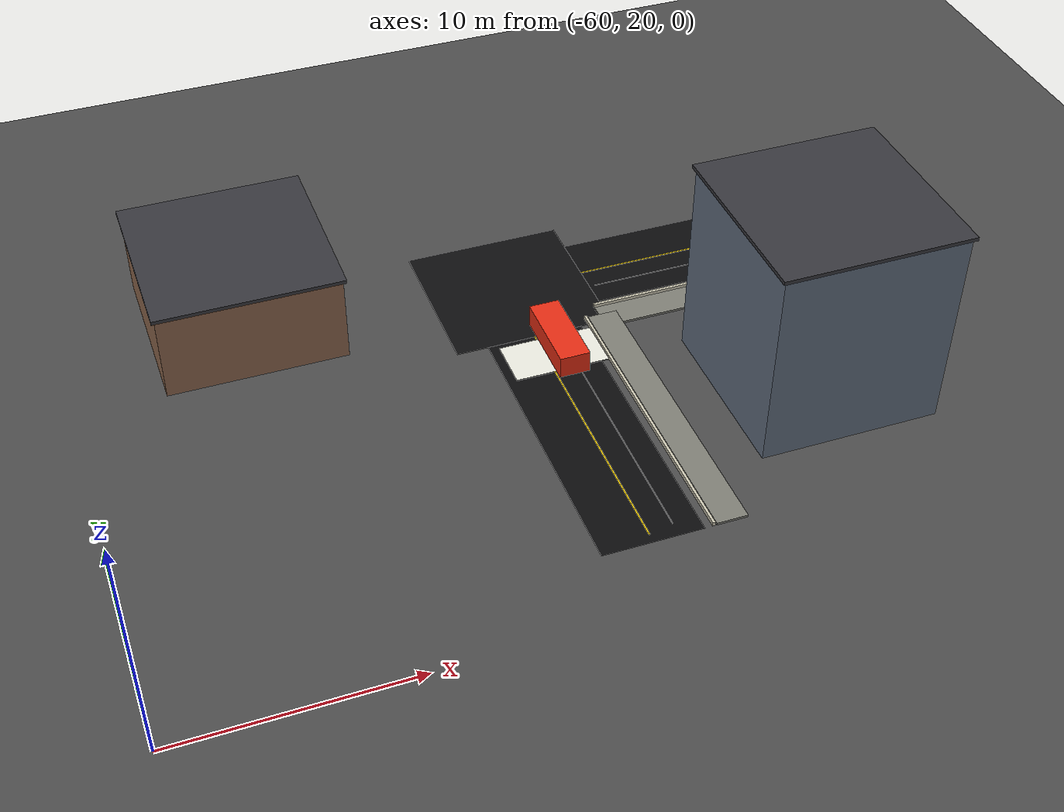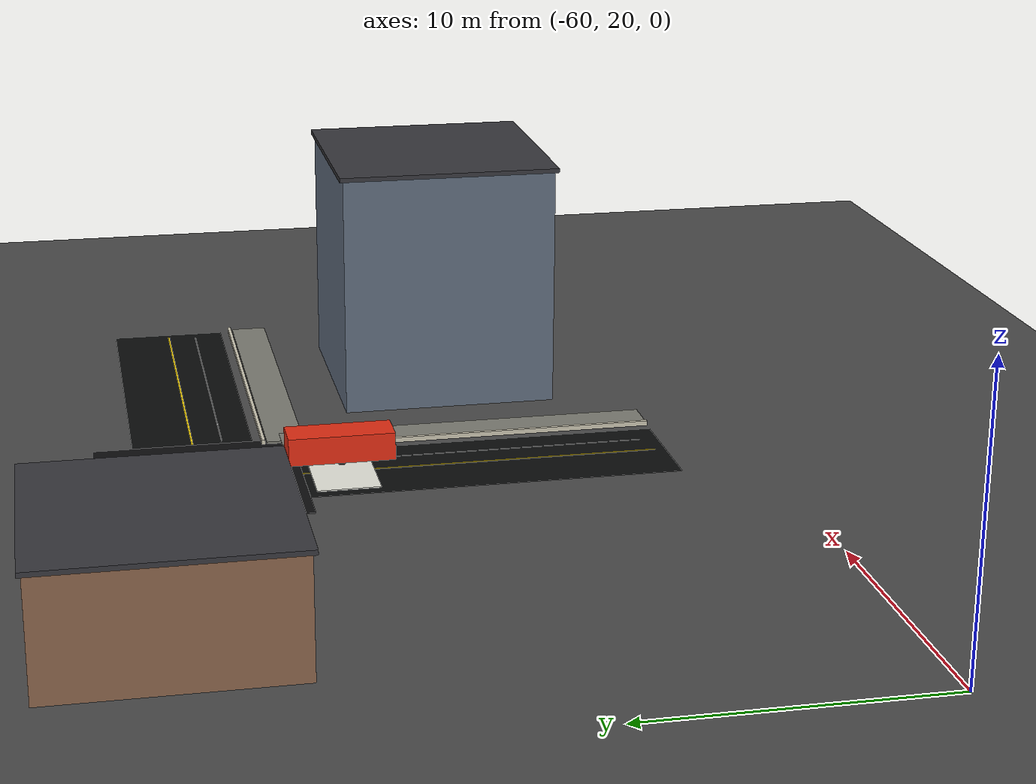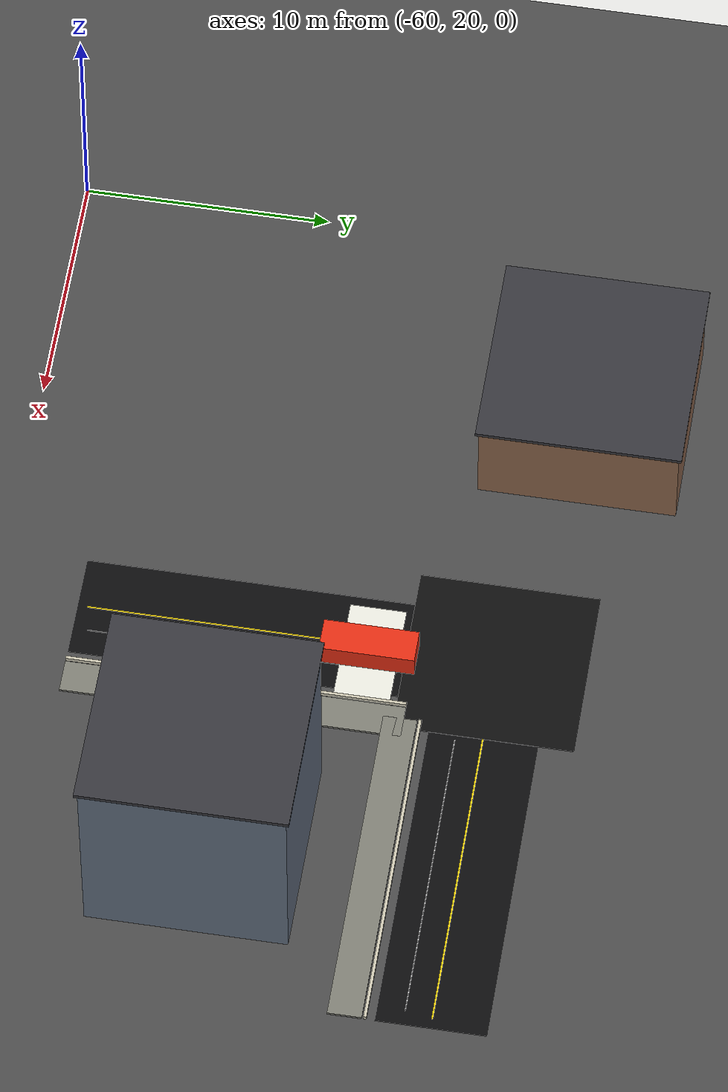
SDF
<sdf version="1.9">
 <world name="smart_city_world">
  <model name="ground">
   <static>true</static>
   <link name="link">
    <collision name="collision"><geometry><box><size>145 145 0.05</size></box></geometry></collision>
    <visual name="visual">
     <geometry><box><size>145 145 0.05</size></box></geometry>
     <material><ambient>0.30 0.30 0.30 1</ambient><diffuse>0.30 0.30 0.30 1</diffuse></material>
    </visual>
   </link>
  </model>
  <model name="road_e1">
   <static>true</static>
   <pose>-30.000 40.000 0.018 0 0 0.000000</pose>
   <link name="link">
    <collision name="collision"><geometry><box><size>13.600 4.350 0.030</size></box></geometry></collision>
    <visual name="visual">
     <geometry><box><size>13.600 4.350 0.030</size></box></geometry>
     <material><ambient>0.045 0.047 0.05 1</ambient><diffuse>0.045 0.047 0.05 1</diffuse></material>
    </visual>
   </link>
  </model>
  <model name="center_line_e1">
   <static>true</static>
   <pose>-30.000 40.000 0.052 0 0 0.000000</pose>
   <link name="link">
    <visual name="visual">
     <geometry><box><size>12.800 0.070 0.010</size></box></geometry>
     <material><ambient>1 0.86 0.05 1</ambient><diffuse>1 0.86 0.05 1</diffuse></material>
    </visual>
   </link>
  </model>
  <model name="sidewalk_e1_R">
   <static>true</static>
   <pose>-30.000 36.650 0.075 0 0 0.000000</pose>
   <link name="link">
    <visual name="visual">
     <geometry><box><size>13.600 1.350 0.100</size></box></geometry>
     <material><ambient>0.5 0.5 0.46 1</ambient><diffuse>0.5 0.5 0.46 1</diffuse></material>
    </visual>
   </link>
  </model>
  <model name="curb_e1_R">
   <static>true</static>
   <pose>-30.000 37.450 0.130 0 0 0.000000</pose>
   <link name="link">
    <visual name="visual">
     <geometry><box><size>13.600 0.120 0.180</size></box></geometry>
     <material><ambient>0.8 0.78 0.7 1</ambient><diffuse>0.8 0.78 0.7 1</diffuse></material>
    </visual>
   </link>
  </model>
  <model name="edge_line_e1_R">
   <static>true</static>
   <pose>-30.000 38.920 0.054 0 0 0.000000</pose>
   <link name="link">
    <visual name="visual">
     <geometry><box><size>12.400 0.035 0.010</size></box></geometry>
     <material><ambient>0.85 0.85 0.85 1</ambient><diffuse>0.85 0.85 0.85 1</diffuse></material>
    </visual>
   </link>
  </model>
  <model name="road_e21">
   <static>true</static>
   <pose>-40.000 30.000 0.018 0 0 -1.570796</pose>
   <link name="link">
    <collision name="collision"><geometry><box><size>13.600 4.350 0.030</size></box></geometry></collision>
    <visual name="visual">
     <geometry><box><size>13.600 4.350 0.030</size></box></geometry>
     <material><ambient>0.045 0.047 0.05 1</ambient><diffuse>0.045 0.047 0.05 1</diffuse></material>
    </visual>
   </link>
  </model>
  <model name="center_line_e21">
   <static>true</static>
   <pose>-40.000 30.000 0.052 0 0 -1.570796</pose>
   <link name="link">
    <visual name="visual">
     <geometry><box><size>12.800 0.070 0.010</size></box></geometry>
     <material><ambient>1 0.86 0.05 1</ambient><diffuse>1 0.86 0.05 1</diffuse></material>
    </visual>
   </link>
  </model>
  <model name="sidewalk_e21_L">
   <static>true</static>
   <pose>-36.650 30.000 0.075 0 0 -1.570796</pose>
   <link name="link">
    <visual name="visual">
     <geometry><box><size>13.600 1.350 0.100</size></box></geometry>
     <material><ambient>0.5 0.5 0.46 1</ambient><diffuse>0.5 0.5 0.46 1</diffuse></material>
    </visual>
   </link>
  </model>
  <model name="curb_e21_L">
   <static>true</static>
   <pose>-37.450 30.000 0.130 0 0 -1.570796</pose>
   <link name="link">
    <visual name="visual">
     <geometry><box><size>13.600 0.120 0.180</size></box></geometry>
     <material><ambient>0.8 0.78 0.7 1</ambient><diffuse>0.8 0.78 0.7 1</diffuse></material>
    </visual>
   </link>
  </model>
  <model name="edge_line_e21_L">
   <static>true</static>
   <pose>-38.920 30.000 0.054 0 0 -1.570796</pose>
   <link name="link">
    <visual name="visual">
     <geometry><box><size>12.400 0.035 0.010</size></box></geometry>
     <material><ambient>0.85 0.85 0.85 1</ambient><diffuse>0.85 0.85 0.85 1</diffuse></material>
    </visual>
   </link>
  </model>
  <model name="intersection_plate_n1">
   <static>true</static>
   <pose>-40.000 40.000 0.025 0 0 0.000000</pose>
   <link name="link">
    <collision name="collision"><geometry><box><size>7.200 7.200 0.035</size></box></geometry></collision>
    <visual name="visual">
     <geometry><box><size>7.200 7.200 0.035</size></box></geometry>
     <material><ambient>0.055 0.055 0.058 1</ambient><diffuse>0.055 0.055 0.058 1</diffuse></material>
    </visual>
   </link>
  </model>
  <model name="parking_bus_1">
   <static>true</static>
   <pose>-39.400 35.000 0.052 0 0 0.000000</pose>
   <link name="link">
    <collision name="collision"><geometry><box><size>4.700 2.250 0.050</size></box></geometry></collision>
    <visual name="visual">
     <geometry><box><size>4.700 2.250 0.050</size></box></geometry>
     <material><ambient>0.92 0.92 0.88 1</ambient><diffuse>0.92 0.92 0.88 1</diffuse></material>
    </visual>
   </link>
  </model>
  <model name="office_a">
   <static>true</static>
   <pose>-30.000 30.000 4.500 0 0 0.000000</pose>
   <link name="link">
    <collision name="collision"><geometry><box><size>8.000 8.000 9.000</size></box></geometry></collision>
    <visual name="visual">
     <geometry><box><size>8.000 8.000 9.000</size></box></geometry>
     <material><ambient>0.38 0.43 0.5 1</ambient><diffuse>0.38 0.43 0.5 1</diffuse></material>
    </visual>
   </link>
  </model>
  <model name="office_a_roof">
   <static>true</static>
   <pose>-30.000 30.000 9.080 0 0 0.000000</pose>
   <link name="link">
    <visual name="visual">
     <geometry><box><size>8.250 8.250 0.160</size></box></geometry>
     <material><ambient>0.22 0.22 0.24 1</ambient><diffuse>0.22 0.22 0.24 1</diffuse></material>
    </visual>
   </link>
  </model>
  <model name="library">
   <static>true</static>
   <pose>-52.000 42.000 2.000 0 0 0.000000</pose>
   <link name="link">
    <collision name="collision"><geometry><box><size>8.000 8.000 4.000</size></box></geometry></collision>
    <visual name="visual">
     <geometry><box><size>8.000 8.000 4.000</size></box></geometry>
     <material><ambient>0.55 0.4 0.3 1</ambient><diffuse>0.55 0.4 0.3 1</diffuse></material>
    </visual>
   </link>
  </model>
  <model name="library_roof">
   <static>true</static>
   <pose>-52.000 42.000 4.080 0 0 0.000000</pose>
   <link name="link">
    <visual name="visual">
     <geometry><box><size>8.250 8.250 0.160</size></box></geometry>
     <material><ambient>0.22 0.22 0.24 1</ambient><diffuse>0.22 0.22 0.24 1</diffuse></material>
    </visual>
   </link>
  </model>
  <model name="bus_1">
   <pose>-39.400 35.000 0.28 0 0 -1.5700</pose>
   <link name="base_link">
    <inertial>
     <pose>0 0 0.22 0 0 0</pose>
     <mass>3500</mass>
     <inertia><ixx>825</ixx><iyy>4500</iyy><izz>4750</izz><ixy>0</ixy><ixz>0</ixz><iyz>0</iyz></inertia>
    </inertial>
    <collision name="body_collision">
     <pose>0 0 0.60 0 0 0</pose>
     <geometry><box><size>3.8 1.35 1.0</size></box></geometry>
     <surface>
      <friction><ode><mu>4.0</mu><mu2>4.0</mu2><slip1>0.0</slip1><slip2>0.0</slip2></ode></friction>
      <contact>
       <ode><kp>1500000</kp><kd>30000</kd><max_vel>0.05</max_vel><min_depth>0.001</min_depth></ode>
      </contact>
      <bounce><restitution_coefficient>0.0</restitution_coefficient><threshold>100000.0</threshold></bounce>
     </surface>
    </collision>
    <visual name="body_visual">
     <pose>0 0 0.60 0 0 0</pose>
     <geometry><box><size>3.8 1.35 1.0</size></box></geometry>
     <material><ambient>0.90 0.18 0.08 1</ambient><diffuse>0.90 0.18 0.08 1</diffuse></material>
    </visual>
    <sensor name="lidar" type="gpu_lidar">
     <pose>2.020 0 1.750 0 0 0</pose>
     <topic>/bus_1/scan</topic>
     <update_rate>10</update_rate>
     <lidar>
      <scan>
       <horizontal>
        <samples>360</samples>
        <resolution>1</resolution>
        <min_angle>-3.14159</min_angle>
        <max_angle>3.14159</max_angle>
       </horizontal>
      </scan>
      <range><min>0.12</min><max>18.0</max><resolution>0.03</resolution></range>
     </lidar>
     <always_on>1</always_on>
     <visualize>false</visualize>
    </sensor>
   </link>
   <link name="left_wheel">
    <pose>0 0.525 0.220 1.5708 0 0</pose>
    <collision name="collision">
     <geometry><cylinder><radius>0.22</radius><length>0.16</length></cylinder></geometry>
     <surface>
      <friction><ode><mu>4.0</mu><mu2>4.0</mu2><slip1>0.0</slip1><slip2>0.0</slip2></ode></friction>
      <contact>
       <ode><kp>1500000</kp><kd>30000</kd><max_vel>0.05</max_vel><min_depth>0.001</min_depth></ode>
      </contact>
      <bounce><restitution_coefficient>0.0</restitution_coefficient><threshold>100000.0</threshold></bounce>
     </surface>
    </collision>
    <visual name="visual">
     <geometry><cylinder><radius>0.22</radius><length>0.16</length></cylinder></geometry>
     <material><ambient>0.01 0.01 0.01 1</ambient><diffuse>0.01 0.01 0.01 1</diffuse></material>
    </visual>
   </link>
   <link name="right_wheel">
    <pose>0 -0.525 0.220 1.5708 0 0</pose>
    <collision name="collision">
     <geometry><cylinder><radius>0.22</radius><length>0.16</length></cylinder></geometry>
     <surface>
      <friction><ode><mu>4.0</mu><mu2>4.0</mu2><slip1>0.0</slip1><slip2>0.0</slip2></ode></friction>
      <contact>
       <ode><kp>1500000</kp><kd>30000</kd><max_vel>0.05</max_vel><min_depth>0.001</min_depth></ode>
      </contact>
      <bounce><restitution_coefficient>0.0</restitution_coefficient><threshold>100000.0</threshold></bounce>
     </surface>
    </collision>
    <visual name="visual">
     <geometry><cylinder><radius>0.22</radius><length>0.16</length></cylinder></geometry>
     <material><ambient>0.01 0.01 0.01 1</ambient><diffuse>0.01 0.01 0.01 1</diffuse></material>
    </visual>
   </link>
   <joint name="left_wheel_joint" type="revolute">
    <parent>base_link</parent>
    <child>left_wheel</child>
    <axis>
     <xyz>0 0 1</xyz>
     <limit><lower>-1e16</lower><upper>1e16</upper></limit>
     <dynamics><damping>3</damping><friction>1</friction></dynamics>
    </axis>
   </joint>
   <joint name="right_wheel_joint" type="revolute">
    <parent>base_link</parent>
    <child>right_wheel</child>
    <axis>
     <xyz>0 0 1</xyz>
     <limit><lower>-1e16</lower><upper>1e16</upper></limit>
     <dynamics><damping>3</damping><friction>1</friction></dynamics>
    </axis>
   </joint>
   <plugin filename="gz-sim-diff-drive-system" name="gz::sim::systems::DiffDrive">
    <left_joint>left_wheel_joint</left_joint>
    <right_joint>right_wheel_joint</right_joint>
    <wheel_separation>1.05</wheel_separation>
    <wheel_radius>0.22</wheel_radius>
    <topic>/bus_1/cmd_vel</topic>
    <odom_topic>/bus_1/odom</odom_topic>
    <frame_id>bus_1/odom</frame_id>
    <child_frame_id>bus_1/base_link</child_frame_id>
    <odom_publish_frequency>30</odom_publish_frequency>
   </plugin>
   <plugin filename="libmodel_world_pose_publisher.so" name="smart_city::ModelWorldPosePublisher"/>
  </model>
 </world>
</sdf>
